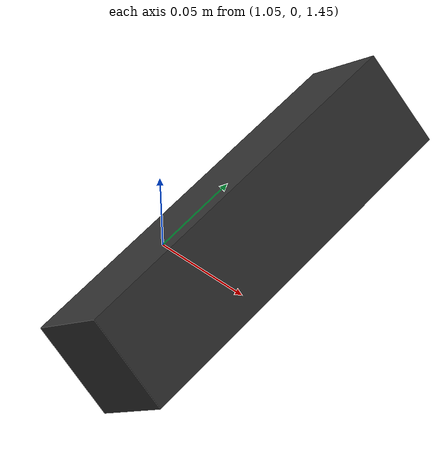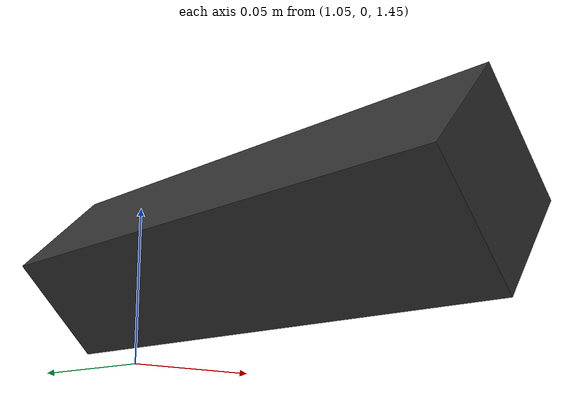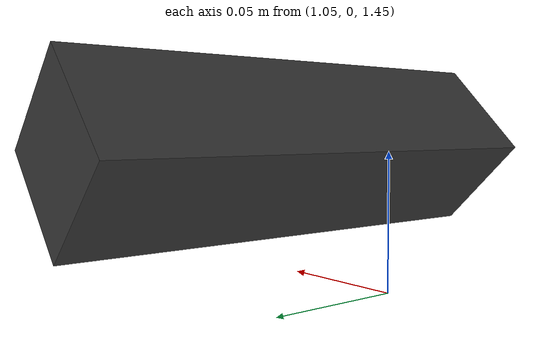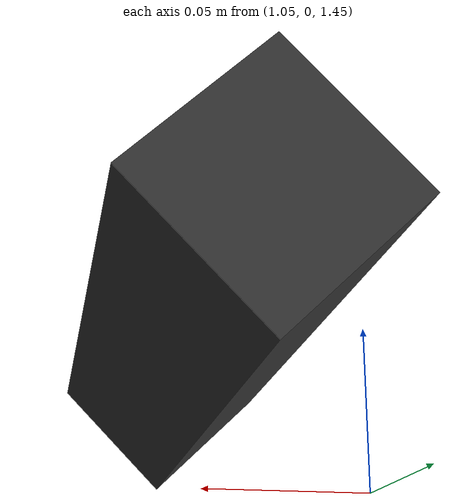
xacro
<?xml version="1.0"?>
<robot xmlns:xacro="http://www.ros.org/wiki/xacro" name="kinect_link2">
    <link name="world">
        <origin xyz="0.0 0.0 0.0" />
    </link>
    <link name="base_link2"></link>

    <joint name="kinect_jnt2" type="fixed">
        <parent link="base_link2" />
        <child link="kinect_link2" />
        <axis xyz="0 1 0" />
        <origin xyz="1.1 0.0 1.5" rpy="0.0 0.8 3.14" />
    </joint>

    <joint name="world_jnt2" type="fixed">
        <parent link="world" />
        <child link="base_link2" />
    </joint>

    <link name="kinect_link2">
        <collision>
            <origin xyz="0 0 0" rpy="0 0 0" />
            <geometry>
                <box size="0.05 0.2 0.05" />
            </geometry>
        </collision>

        <visual>
            <origin xyz="0 0 0" rpy="0 0 0" />
            <geometry>
                <box size="0.05 0.2 0.05" />
            </geometry>
            <material name="kinect_gray">
                <color rgba="0.2 0.2 0.2 1.0" />
            </material>
        </visual>

        <inertial>
            <mass value="0.1" />
            <origin xyz="0 0 0" rpy="0 0 0" />
            <inertia ixx="0.001" ixy="0" ixz="0" iyy="0.001" iyz="0" izz="0.001" />
        </inertial>
    </link>

    <gazebo reference="kinect_link2">
        <sensor type="depth" name="openni_camera_camera">
            <always_on>1</always_on>
            <visualize>true</visualize>
            <camera>
                <horizontal_fov>1.487</horizontal_fov>
                <image>
                    <width>1280</width>
                    <height>720</height>
                    <format>R8G8B8</format>
                </image>
                <depth_camera></depth_camera>
                <clip>
                    <near>0.1</near>
                    <far>100</far>
                </clip>
            </camera>
            <plugin name="camera_controller" filename="libgazebo_ros_openni_kinect.so">
                <alwaysOn>true</alwaysOn>
                <updateRate>30.0</updateRate>
                <cameraName>kinect</cameraName>
                <frameName>depth_camera2/kinect_pc_frame</frameName>
                <imageTopicName>rgb/image_raw</imageTopicName>
                <depthImageTopicName>depth/image_raw</depthImageTopicName>
                <pointCloudTopicName>depth/points</pointCloudTopicName>
                <cameraInfoTopicName>rgb/camera_info</cameraInfoTopicName>
                <depthImageCameraInfoTopicName>depth/camera_info</depthImageCameraInfoTopicName>
                <pointCloudCutoff>0.2</pointCloudCutoff>
                <pointCloudCutoffMax>2</pointCloudCutoffMax>
                <hackBaseline>0.07</hackBaseline>
                <distortionK1>0.0</distortionK1>
                <distortionK2>0.0</distortionK2>
                <distortionK3>0.0</distortionK3>
                <distortionT1>0.0</distortionT1>
                <distortionT2>0.0</distortionT2>
                <CxPrime>0.0</CxPrime>
                <Cx>0.0</Cx>
                <Cy>0.0</Cy>
                <focalLength>0.0</focalLength>
            </plugin>
        </sensor>
    </gazebo>
</robot>
